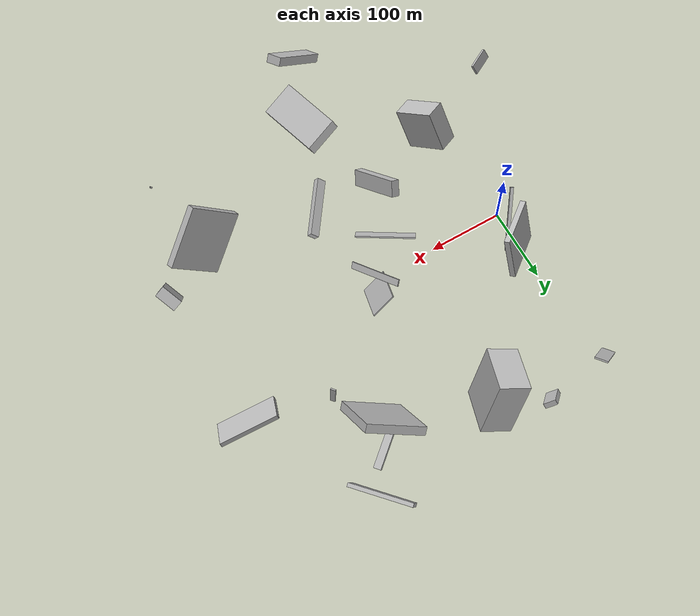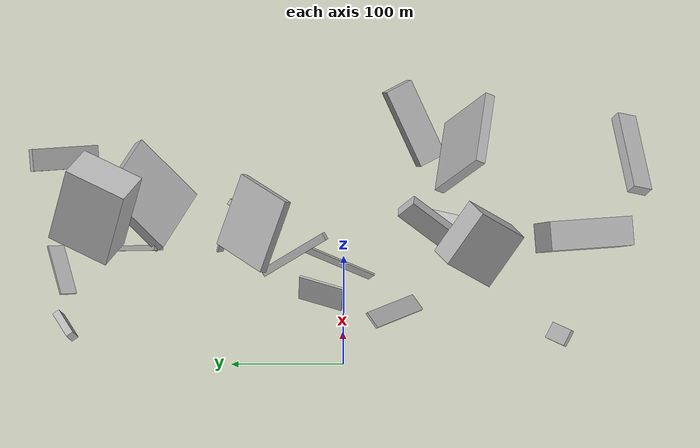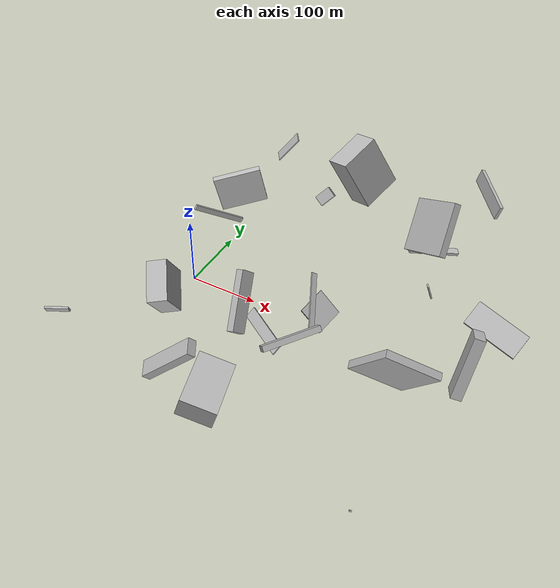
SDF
<sdf version="1.6">
 <world name="default">
  <scene>
   <sky><clouds><speed>12</speed></clouds></sky>
   <ambient>0.4 0.4 0.4 1</ambient>
   <background>0.7 0.7 0.7 1</background>
   <shadows>1</shadows>
  </scene>
  <gravity>0 0 -9.8066</gravity>
  <magnetic_field>6e-06 2.3e-05 -4.2e-05</magnetic_field>
  <physics default="0" name="default_physics" type="ode">
   <ode>
    <solver>
     <type>quick</type>
     <iters>10</iters>
     <sor>1.0</sor>
     <use_dynamic_moi_rescaling>0</use_dynamic_moi_rescaling>
    </solver>
    <constraints>
     <cfm>0</cfm>
     <erp>0.2</erp>
     <contact_max_correcting_vel>100</contact_max_correcting_vel>
     <contact_surface_layer>0.001</contact_surface_layer>
    </constraints>
   </ode>
   <max_step_size>0.004</max_step_size>
   <real_time_factor>1</real_time_factor>
   <real_time_update_rate>250</real_time_update_rate>
  </physics>
  <light name="sun" type="directional">
   <pose>0 0 10 0 0 0</pose>
   <diffuse>0.8 0.8 0.8 1</diffuse>
   <specular>0.2 0.2 0.2 1</specular>
   <attenuation>
    <range>1000</range>
    <constant>0.9</constant>
    <linear>0.01</linear>
    <quadratic>0.001</quadratic>
   </attenuation>
   <direction>-0.5 0.1 -0.9</direction>
  </light>
  <model name="building_1">
   <static>0</static>
   <pose>55.38993971271523 -140.85435006431248 84.77342271981225 0.37910346243130444 -0.9605978636117878 -1.442451117819499</pose>
   <link name="link">
    <gravity>0</gravity>
    <pose>0 0 27.0 0 0 0</pose>
    <collision name="collision"><geometry><box><size>55 27 54</size></box></geometry></collision>
    <visual name="visual">
     <cast_shadows>0</cast_shadows>
     <geometry><box><size>55 27 54</size></box></geometry>
     <material>
      <script>
       <uri>model://HANNAS_wall/materials/scripts</uri>
       <uri>model://HANNAS_wall/materials/textures</uri>
       <name>vrc/HANNAS_wall</name>
      </script>
     </material>
    </visual>
   </link>
  </model>
  <model name="building_2">
   <static>0</static>
   <pose>167.19910230091173 236.39584590857288 67.84540859051928 0.3843595002346314 -0.2815285234166445 -0.4338157927032109</pose>
   <link name="link">
    <gravity>0</gravity>
    <pose>0 0 40.0 0 0 0</pose>
    <collision name="collision"><geometry><box><size>39 60 80</size></box></geometry></collision>
    <visual name="visual">
     <cast_shadows>0</cast_shadows>
     <geometry><box><size>39 60 80</size></box></geometry>
     <material>
      <script>
       <uri>model://HANNAS_wall/materials/scripts</uri>
       <uri>model://HANNAS_wall/materials/textures</uri>
       <name>vrc/HANNAS_wall</name>
      </script>
     </material>
    </visual>
   </link>
  </model>
  <model name="building_3">
   <static>0</static>
   <pose>148.3090434140321 -42.80142452595687 12.411377050627056 -2.380488668825447 -0.03131462606681697 2.576111067418939</pose>
   <link name="link">
    <gravity>0</gravity>
    <pose>0 0 8.5 0 0 0</pose>
    <collision name="collision"><geometry><box><size>80 2 17</size></box></geometry></collision>
    <visual name="visual">
     <cast_shadows>0</cast_shadows>
     <geometry><box><size>80 2 17</size></box></geometry>
     <material>
      <script>
       <uri>model://HANNAS_wall/materials/scripts</uri>
       <uri>model://HANNAS_wall/materials/textures</uri>
       <name>vrc/HANNAS_wall</name>
      </script>
     </material>
    </visual>
   </link>
  </model>
  <model name="building_4">
   <static>0</static>
   <pose>421.76270696932255 91.4331303101055 22.90110279506736 -0.577549890170418 -0.27693931746319794 3.0171899839170595</pose>
   <link name="link">
    <gravity>0</gravity>
    <pose>0 0 3.0 0 0 0</pose>
    <collision name="collision"><geometry><box><size>80 36 6</size></box></geometry></collision>
    <visual name="visual">
     <cast_shadows>0</cast_shadows>
     <geometry><box><size>80 36 6</size></box></geometry>
     <material>
      <script>
       <uri>model://HANNAS_wall/materials/scripts</uri>
       <uri>model://HANNAS_wall/materials/textures</uri>
       <name>vrc/HANNAS_wall</name>
      </script>
     </material>
    </visual>
   </link>
  </model>
  <model name="building_5">
   <static>0</static>
   <pose>430.80491785835284 -87.11360278238381 75.46087628177602 -0.37267489185697084 0.24757709010116627 0.3340741185139819</pose>
   <link name="link">
    <gravity>0</gravity>
    <pose>0 0 40.0 0 0 0</pose>
    <collision name="collision"><geometry><box><size>14 28 80</size></box></geometry></collision>
    <visual name="visual">
     <cast_shadows>0</cast_shadows>
     <geometry><box><size>14 28 80</size></box></geometry>
     <material>
      <script>
       <uri>model://HANNAS_wall/materials/scripts</uri>
       <uri>model://HANNAS_wall/materials/textures</uri>
       <name>vrc/HANNAS_wall</name>
      </script>
     </material>
    </visual>
   </link>
  </model>
  <model name="building_6">
   <static>0</static>
   <pose>192.01723295782278 4.626147770208924 41.05862266078334 -2.411331498363343 -0.4776049977165459 2.02656751131218</pose>
   <link name="link">
    <gravity>0</gravity>
    <pose>0 0 1.0 0 0 0</pose>
    <collision name="collision"><geometry><box><size>80 9 2</size></box></geometry></collision>
    <visual name="visual">
     <cast_shadows>0</cast_shadows>
     <geometry><box><size>80 9 2</size></box></geometry>
     <material>
      <script>
       <uri>model://HANNAS_wall/materials/scripts</uri>
       <uri>model://HANNAS_wall/materials/textures</uri>
       <name>vrc/HANNAS_wall</name>
      </script>
     </material>
    </visual>
   </link>
  </model>
  <model name="building_7">
   <static>0</static>
   <pose>256.20859878395817 172.79384482422176 36.213257670381545 -2.495015575323932 -1.291556107483401 0.02744158965675626</pose>
   <link name="link">
    <gravity>0</gravity>
    <pose>0 0 38.0 0 0 0</pose>
    <collision name="collision"><geometry><box><size>5 10 76</size></box></geometry></collision>
    <visual name="visual">
     <cast_shadows>0</cast_shadows>
     <geometry><box><size>5 10 76</size></box></geometry>
     <material>
      <script>
       <uri>model://HANNAS_wall/materials/scripts</uri>
       <uri>model://HANNAS_wall/materials/textures</uri>
       <name>vrc/HANNAS_wall</name>
      </script>
     </material>
    </visual>
   </link>
  </model>
  <model name="building_8">
   <static>0</static>
   <pose>315.37146509978544 167.0205300575405 97.15418775170083 2.1147129687631017 -0.5589436173890489 -2.3288350112552156</pose>
   <link name="link">
    <gravity>0</gravity>
    <pose>0 0 39.5 0 0 0</pose>
    <collision name="collision"><geometry><box><size>11 76 79</size></box></geometry></collision>
    <visual name="visual">
     <cast_shadows>0</cast_shadows>
     <geometry><box><size>11 76 79</size></box></geometry>
     <material>
      <script>
       <uri>model://HANNAS_wall/materials/scripts</uri>
       <uri>model://HANNAS_wall/materials/textures</uri>
       <name>vrc/HANNAS_wall</name>
      </script>
     </material>
    </visual>
   </link>
  </model>
  <model name="building_9">
   <static>0</static>
   <pose>71.8703010924421 254.09410048012367 17.257404189241733 -2.3321297422190144 0.6880576192449108 -2.4307968653779333</pose>
   <link name="link">
    <gravity>0</gravity>
    <pose>0 0 8.5 0 0 0</pose>
    <collision name="collision"><geometry><box><size>26 7 17</size></box></geometry></collision>
    <visual name="visual">
     <cast_shadows>0</cast_shadows>
     <geometry><box><size>26 7 17</size></box></geometry>
     <material>
      <script>
       <uri>model://HANNAS_wall/materials/scripts</uri>
       <uri>model://HANNAS_wall/materials/textures</uri>
       <name>vrc/HANNAS_wall</name>
      </script>
     </material>
    </visual>
   </link>
  </model>
  <model name="building_10">
   <static>0</static>
   <pose>8.274885234698349 60.50686999265133 115.13945702102232 -1.3722764978698712 0.27522425521362803 -0.8466966388562248</pose>
   <link name="link">
    <gravity>0</gravity>
    <pose>0 0 32.5 0 0 0</pose>
    <collision name="collision"><geometry><box><size>7 68 65</size></box></geometry></collision>
    <visual name="visual">
     <cast_shadows>0</cast_shadows>
     <geometry><box><size>7 68 65</size></box></geometry>
     <material>
      <script>
       <uri>model://HANNAS_wall/materials/scripts</uri>
       <uri>model://HANNAS_wall/materials/textures</uri>
       <name>vrc/HANNAS_wall</name>
      </script>
     </material>
    </visual>
   </link>
  </model>
  <model name="building_11">
   <static>0</static>
   <pose>193.95207196450525 -132.5528152139023 71.12960247645428 -1.5221461335025617 -0.6717646509379956 -0.646518871168884</pose>
   <link name="link">
    <gravity>0</gravity>
    <pose>0 0 40.0 0 0 0</pose>
    <collision name="collision"><geometry><box><size>12 8 80</size></box></geometry></collision>
    <visual name="visual">
     <cast_shadows>0</cast_shadows>
     <geometry><box><size>12 8 80</size></box></geometry>
     <material>
      <script>
       <uri>model://HANNAS_wall/materials/scripts</uri>
       <uri>model://HANNAS_wall/materials/textures</uri>
       <name>vrc/HANNAS_wall</name>
      </script>
     </material>
    </visual>
   </link>
  </model>
  <model name="building_12">
   <static>0</static>
   <pose>180.541640599555 19.796284744932777 23.939481186389457 -2.3881761051145847 0.2328963757057414 -1.7784272994505597</pose>
   <link name="link">
    <gravity>0</gravity>
    <pose>0 0 20.5 0 0 0</pose>
    <collision name="collision"><geometry><box><size>42 2 41</size></box></geometry></collision>
    <visual name="visual">
     <cast_shadows>0</cast_shadows>
     <geometry><box><size>42 2 41</size></box></geometry>
     <material>
      <script>
       <uri>model://HANNAS_wall/materials/scripts</uri>
       <uri>model://HANNAS_wall/materials/textures</uri>
       <name>vrc/HANNAS_wall</name>
      </script>
     </material>
    </visual>
   </link>
  </model>
  <model name="building_13">
   <static>0</static>
   <pose>18.777768665890015 42.21780629520466 93.21514050925438 0.060552770326096725 -0.5886290884891189 -2.1724260824998796</pose>
   <link name="link">
    <gravity>0</gravity>
    <pose>0 0 3.5 0 0 0</pose>
    <collision name="collision"><geometry><box><size>80 4 7</size></box></geometry></collision>
    <visual name="visual">
     <cast_shadows>0</cast_shadows>
     <geometry><box><size>80 4 7</size></box></geometry>
     <material>
      <script>
       <uri>model://HANNAS_wall/materials/scripts</uri>
       <uri>model://HANNAS_wall/materials/textures</uri>
       <name>vrc/HANNAS_wall</name>
      </script>
     </material>
    </visual>
   </link>
  </model>
  <model name="building_14">
   <static>0</static>
   <pose>384.18042646727383 -259.26715231439067 22.036191526065956 0.8079343315670737 -0.4763810577230258 -2.3141444557375395</pose>
   <link name="link">
    <gravity>0</gravity>
    <pose>0 0 1.0 0 0 0</pose>
    <collision name="collision"><geometry><box><size>2 3 2</size></box></geometry></collision>
    <visual name="visual">
     <cast_shadows>0</cast_shadows>
     <geometry><box><size>2 3 2</size></box></geometry>
     <material>
      <script>
       <uri>model://HANNAS_wall/materials/scripts</uri>
       <uri>model://HANNAS_wall/materials/textures</uri>
       <name>vrc/HANNAS_wall</name>
      </script>
     </material>
    </visual>
   </link>
  </model>
  <model name="building_15">
   <static>0</static>
   <pose>140.7570971494207 -87.1832446191345 89.08178033421505 -2.1469043267154277 -0.6827660956838969 1.8959578643046644</pose>
   <link name="link">
    <gravity>0</gravity>
    <pose>0 0 5.5 0 0 0</pose>
    <collision name="collision"><geometry><box><size>80 21 11</size></box></geometry></collision>
    <visual name="visual">
     <cast_shadows>0</cast_shadows>
     <geometry><box><size>80 21 11</size></box></geometry>
     <material>
      <script>
       <uri>model://HANNAS_wall/materials/scripts</uri>
       <uri>model://HANNAS_wall/materials/textures</uri>
       <name>vrc/HANNAS_wall</name>
      </script>
     </material>
    </visual>
   </link>
  </model>
  <model name="building_16">
   <static>0</static>
   <pose>317.31205641871964 116.4596034337185 15.47749321077784 0.07040267050289613 -0.2872790042971957 0.6553746221599385</pose>
   <link name="link">
    <gravity>0</gravity>
    <pose>0 0 12.5 0 0 0</pose>
    <collision name="collision"><geometry><box><size>2 7 25</size></box></geometry></collision>
    <visual name="visual">
     <cast_shadows>0</cast_shadows>
     <geometry><box><size>2 7 25</size></box></geometry>
     <material>
      <script>
       <uri>model://HANNAS_wall/materials/scripts</uri>
       <uri>model://HANNAS_wall/materials/textures</uri>
       <name>vrc/HANNAS_wall</name>
      </script>
     </material>
    </visual>
   </link>
  </model>
  <model name="building_17">
   <static>0</static>
   <pose>127.15717181358018 -270.34933710124636 125.86570735818543 0.7778698881835294 -0.2945502311665923 2.066866485031732</pose>
   <link name="link">
    <gravity>0</gravity>
    <pose>0 0 40.0 0 0 0</pose>
    <collision name="collision"><geometry><box><size>20 11 80</size></box></geometry></collision>
    <visual name="visual">
     <cast_shadows>0</cast_shadows>
     <geometry><box><size>20 11 80</size></box></geometry>
     <material>
      <script>
       <uri>model://HANNAS_wall/materials/scripts</uri>
       <uri>model://HANNAS_wall/materials/textures</uri>
       <name>vrc/HANNAS_wall</name>
      </script>
     </material>
    </visual>
   </link>
  </model>
  <model name="building_18">
   <static>0</static>
   <pose>-83.79608149066715 -191.23339695864138 59.62247751273586 -2.5837735404630053 0.014268785213907995 0.5014757973830155</pose>
   <link name="link">
    <gravity>0</gravity>
    <pose>0 0 7.5 0 0 0</pose>
    <collision name="collision"><geometry><box><size>31 3 15</size></box></geometry></collision>
    <visual name="visual">
     <cast_shadows>0</cast_shadows>
     <geometry><box><size>31 3 15</size></box></geometry>
     <material>
      <script>
       <uri>model://HANNAS_wall/materials/scripts</uri>
       <uri>model://HANNAS_wall/materials/textures</uri>
       <name>vrc/HANNAS_wall</name>
      </script>
     </material>
    </visual>
   </link>
  </model>
  <model name="building_19">
   <static>0</static>
   <pose>390.1309723735161 -123.217886523992 136.32447563869815 2.6207915400331596 -0.5833893802117498 -2.542830689887193</pose>
   <link name="link">
    <gravity>0</gravity>
    <pose>0 0 37.0 0 0 0</pose>
    <collision name="collision"><geometry><box><size>80 10 74</size></box></geometry></collision>
    <visual name="visual">
     <cast_shadows>0</cast_shadows>
     <geometry><box><size>80 10 74</size></box></geometry>
     <material>
      <script>
       <uri>model://HANNAS_wall/materials/scripts</uri>
       <uri>model://HANNAS_wall/materials/textures</uri>
       <name>vrc/HANNAS_wall</name>
      </script>
     </material>
    </visual>
   </link>
  </model>
  <model name="building_20">
   <static>0</static>
   <pose>330.52588674303956 263.5235418059658 93.05637535863461 0.11959413476268888 0.2580201894624787 0.7457909458818687</pose>
   <link name="link">
    <gravity>0</gravity>
    <pose>0 0 10.5 0 0 0</pose>
    <collision name="collision"><geometry><box><size>5 80 21</size></box></geometry></collision>
    <visual name="visual">
     <cast_shadows>0</cast_shadows>
     <geometry><box><size>5 80 21</size></box></geometry>
     <material>
      <script>
       <uri>model://HANNAS_wall/materials/scripts</uri>
       <uri>model://HANNAS_wall/materials/textures</uri>
       <name>vrc/HANNAS_wall</name>
      </script>
     </material>
    </visual>
   </link>
  </model>
  <model name="building_21">
   <static>0</static>
   <pose>149.73300993078888 -228.91937629052995 79.40168040790827 -3.1070617856575082 -1.2655126898128795 0.25426376790749705</pose>
   <link name="link">
    <gravity>0</gravity>
    <pose>0 0 23.5 0 0 0</pose>
    <collision name="collision"><geometry><box><size>27 80 47</size></box></geometry></collision>
    <visual name="visual">
     <cast_shadows>0</cast_shadows>
     <geometry><box><size>27 80 47</size></box></geometry>
     <material>
      <script>
       <uri>model://HANNAS_wall/materials/scripts</uri>
       <uri>model://HANNAS_wall/materials/textures</uri>
       <name>vrc/HANNAS_wall</name>
      </script>
     </material>
    </visual>
   </link>
  </model>
  <model name="building_22">
   <static>0</static>
   <pose>13.293249784039594 251.17868931250837 83.40103718640046 -0.9177233605886818 -0.14861200799581278 2.195111736660254</pose>
   <link name="link">
    <gravity>0</gravity>
    <pose>0 0 1.0 0 0 0</pose>
    <collision name="collision"><geometry><box><size>17 47 2</size></box></geometry></collision>
    <visual name="visual">
     <cast_shadows>0</cast_shadows>
     <geometry><box><size>17 47 2</size></box></geometry>
     <material>
      <script>
       <uri>model://HANNAS_wall/materials/scripts</uri>
       <uri>model://HANNAS_wall/materials/textures</uri>
       <name>vrc/HANNAS_wall</name>
      </script>
     </material>
    </visual>
   </link>
  </model>
 </world>
</sdf>
